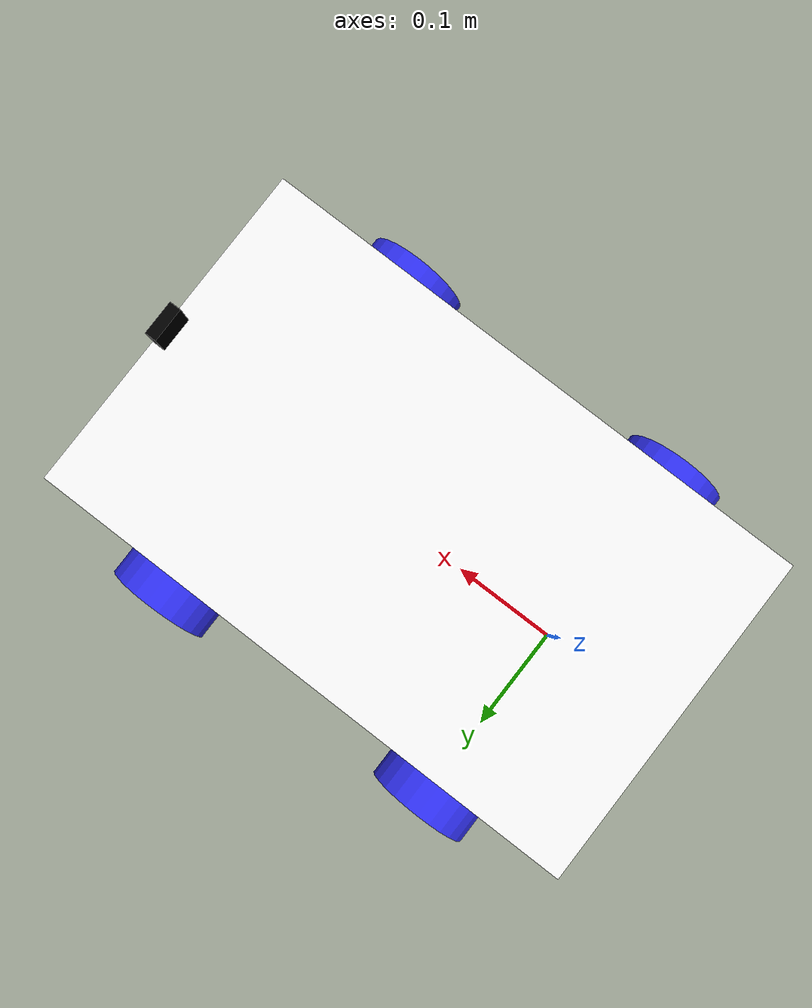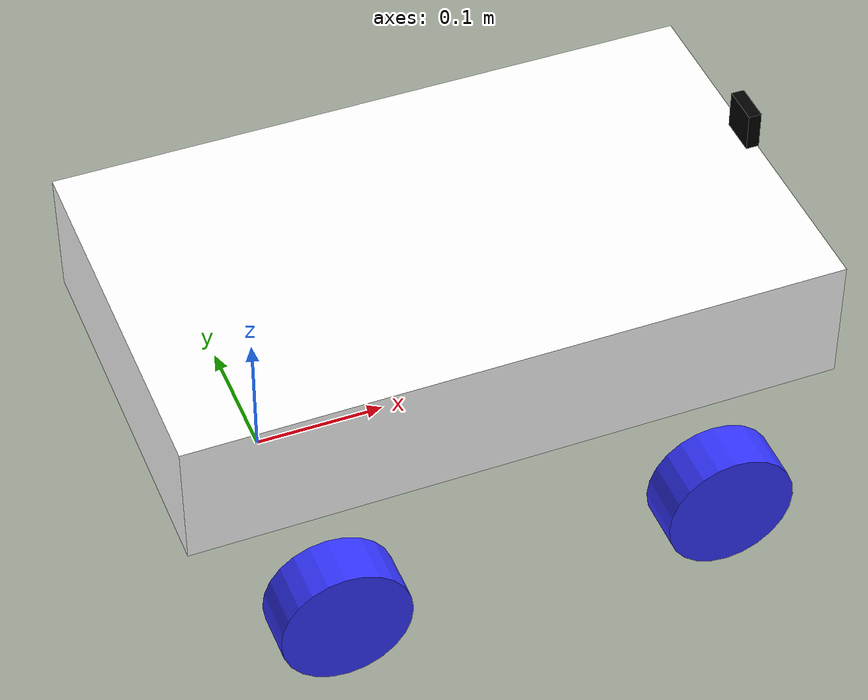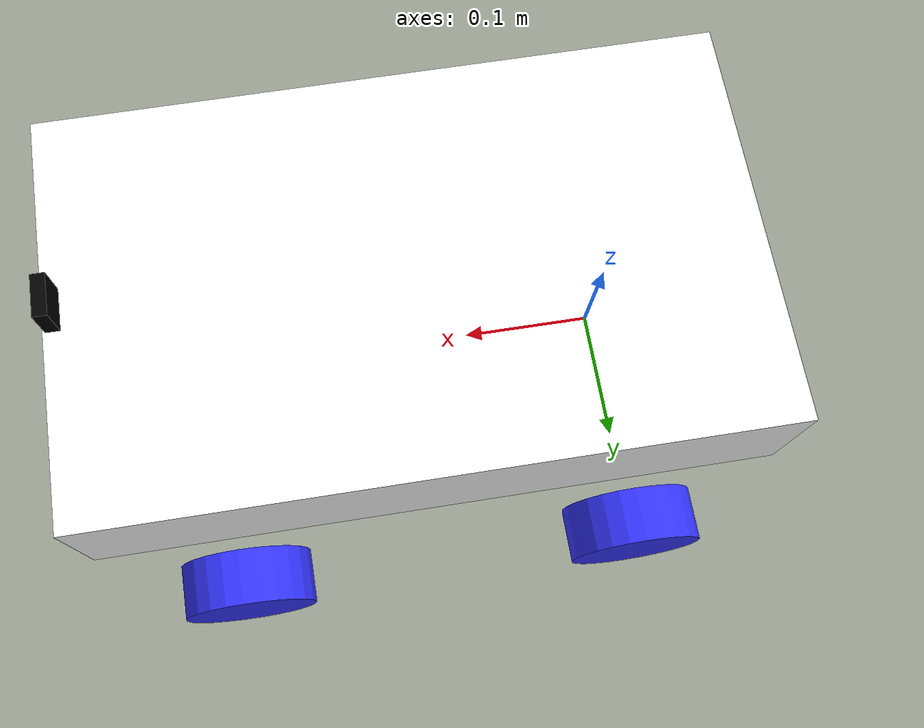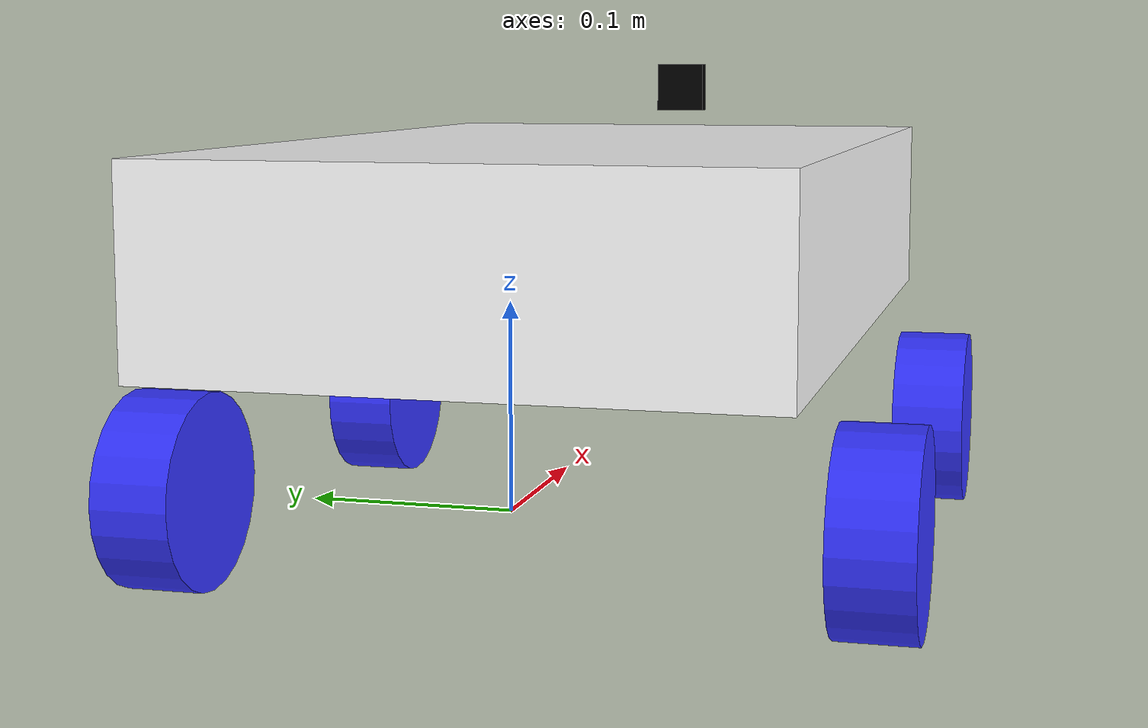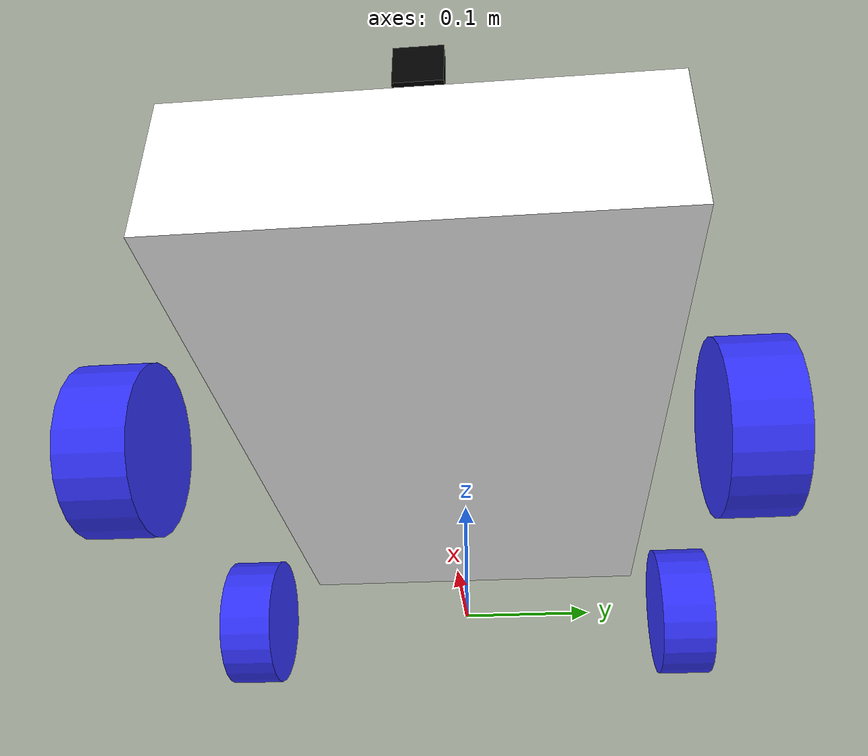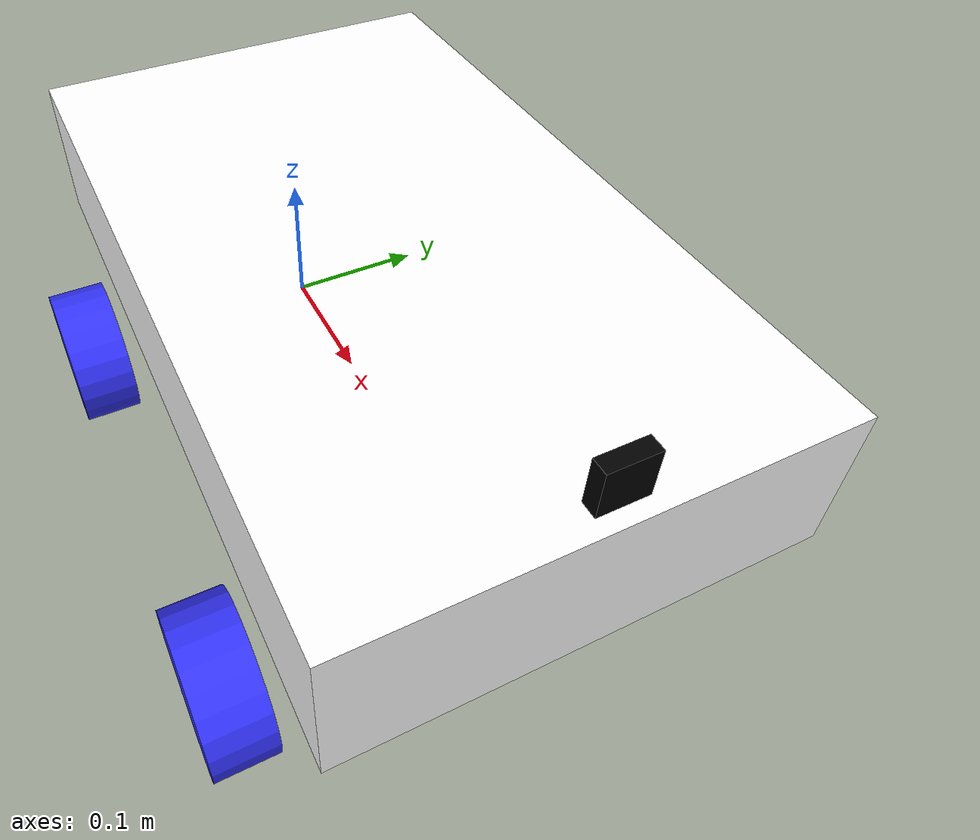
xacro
<?xml version="1.0"?>
<robot xmlns:xacro="http://www.ros.org/wiki/xacro" >

    <xacro:include filename="inertial_macros.xacro"/>

    <material name="white">
        <color rgba="1 1 1 1" />
    </material>

    <material name="orange">
        <color rgba="1 0.3 0.1 1"/>
    </material>

    <material name="blue">
        <color rgba="0.2 0.2 1 1"/>
    </material>

    <material name="black">
        <color rgba="0 0 0 1"/>
    </material>

    <link name="base_link">

    </link>

    <joint name="chassis_joint" type="fixed">
        <parent link="base_link"/>
        <child link="chassis"/>
        <origin xyz="-0.1 0 0"/>
    </joint>

    <link name="chassis">
        <visual>
            <origin xyz="0.25 0 0.12"/>
            <geometry>
                <box size="0.5 0.3 0.1"/>
            </geometry>
            <material name="white"/>
        </visual>
        <collision>
            <origin xyz="0.15 0 0.075"/>
            <geometry>
                <box size="0.3 0.3 0.15"/>
            </geometry>
        </collision>
        <xacro:inertial_box mass="0.5" x="0.3" y="0.3" z="0.15">
            <origin xyz="0.15 0 0.075" rpy="0 0 0"/>
        </xacro:inertial_box>
    </link>

    <gazebo reference="chassis">
        <material>Gazebo/Red</material>
    </gazebo>

    <joint name="left_wheel_joint" type="continuous">
        <parent link="base_link"/>
        <child link="left_wheel"/>
        <origin xyz="0 0.175 0" rpy="-${pi/2} 0 0" />
        <axis xyz="0 0 1"/>
    </joint>

    <link name="left_wheel">
        <visual>
            <geometry>
                <cylinder radius="0.05" length="0.04"/>
            </geometry>
            <material name="blue"/>
        </visual>
        <collision>
            <geometry>
                <cylinder radius="0.05" length="0.04"/>
            </geometry>
        </collision>
        <xacro:inertial_cylinder mass="0.1" length="0.04" radius="0.05">
            <origin xyz="0 0 0" rpy="0 0 0"/>
        </xacro:inertial_cylinder>
    </link>

    <gazebo reference="left_wheel">
        <material>Gazebo/Blue</material>
    </gazebo>

    <joint name="left_wheel_joint_2" type="continuous">
        <parent link="base_link"/>
        <child link="left_wheel_2"/>
        <origin xyz="0.3 0.175 0" rpy="-${pi/2} 0 0" />
        <axis xyz="0 0 1"/>
    </joint>

    <link name="left_wheel_2">
        <visual>
            <geometry>
                <cylinder radius="0.05" length="0.04"/>
            </geometry>
            <material name="blue"/>
        </visual>
        <collision>
            <geometry>
                <cylinder radius="0.05" length="0.04"/>
            </geometry>
        </collision>
        <xacro:inertial_cylinder mass="0.1" length="0.04" radius="0.05">
            <origin xyz="0 0 0" rpy="0 0 0"/>
        </xacro:inertial_cylinder>
    </link>

    <gazebo reference="left_wheel_2">
        <material>Gazebo/Blue</material>
    </gazebo>

    <joint name="right_wheel_joint" type="continuous">
        <parent link="base_link"/>
        <child link="right_wheel"/>
        <origin xyz="0 -0.175 0" rpy="${pi/2} 0 0" />
        <axis xyz="0 0 -1"/>
    </joint>

    <link name="right_wheel">
        <visual>
            <geometry>
                <cylinder radius="0.05" length="0.04"/>
            </geometry>
            <material name="blue"/>
        </visual>
        <collision>
            <geometry>
                <cylinder radius="0.05" length="0.04"/>
            </geometry>
        </collision>
        <xacro:inertial_cylinder mass="0.1" length="0.04" radius="0.05">
            <origin xyz="0 0 0" rpy="0 0 0"/>
        </xacro:inertial_cylinder>
    </link>

    <gazebo reference="right_wheel">
        <material>Gazebo/Blue</material>
    </gazebo>

    <joint name="right_wheel_joint_2" type="continuous">
        <parent link="base_link"/>
        <child link="right_wheel_2"/>
        <origin xyz="0.3 -0.175 0" rpy="${pi/2} 0 0" />
        <axis xyz="0 0 -1"/>
    </joint>

    <link name="right_wheel_2">
        <visual>
            <geometry>
                <cylinder radius="0.05" length="0.04"/>
            </geometry>
            <material name="blue"/>
        </visual>
        <collision>
            <geometry>
                <cylinder radius="0.05" length="0.04"/>
            </geometry>
        </collision>
        <xacro:inertial_cylinder mass="0.1" length="0.04" radius="0.05">
            <origin xyz="0 0 0" rpy="0 0 0"/>
        </xacro:inertial_cylinder>
    </link>

    <gazebo reference="right_wheel_2">
        <material>Gazebo/Blue</material>
    </gazebo>

    <!-- 1) ZED2 Kameranın Ana Gövde Link'i ve Görünümü -->

<link name="zed2_camera_link">
  <visual>
    <geometry><box size="0.010 0.03 0.03"/></geometry>
    <material name="black"/>
  </visual>
</link>

<joint name="zed2_camera_joint" type="fixed">
  <parent link="base_link"/>
  <child  link="zed2_camera_link"/>
  <origin xyz="0.39 0 0.195" rpy="0 0 0"/>
</joint>

<link name="zed2_left_optical_frame">
  <pose>-0.06 0 0 0 0 0</pose>
</link>

<joint name="zed2_left_optical_joint" type="fixed">
  <parent link="zed2_camera_link"/>
  <child  link="zed2_left_optical_frame"/>
  <origin xyz="0 0 0" rpy="0 0 0"/>
</joint>

<link name="zed2_right_optical_frame">
  <pose>0.06 0 0  0 -1.5708 -1.5708</pose>
</link>

<joint name="zed2_right_optical_joint" type="fixed">
  <parent link="zed2_camera_link"/>
  <child  link="zed2_right_optical_frame"/>
  <origin xyz="0 0 0" rpy="0 0 0"/>
</joint>

<gazebo reference="zed2_left_optical_frame">
  <sensor name="zed2_left_rgb" type="camera">
    <update_rate>30</update_rate>
    <camera>
      <horizontal_fov>1.047</horizontal_fov>
      <image>
        <width>1280</width><height>720</height><format>R8G8B8</format>
      </image>
      <clip><near>0.1</near><far>30.0</far></clip>
    </camera>

    <plugin name="zed2_left_rgb_plugin" filename="libgazebo_ros_camera.so">
      <ros><namespace>/zed2/left</namespace></ros>
      <cameraName>zed2_left</cameraName>
      <imageTopicName>image_raw</imageTopicName>
      <cameraInfoTopicName>camera_info</cameraInfoTopicName>
      <frameName>zed2_left_optical_frame</frameName>
      <alwaysOn>true</alwaysOn>
    </plugin>
  </sensor>
</gazebo>

<gazebo reference="zed2_camera_link">
        <material>Gazebo/Black</material>
    </gazebo>

<gazebo reference="zed2_right_optical_frame">
  <sensor name="zed2_right_depth" type="depth">
    <always_on>true</always_on>
    <update_rate>30</update_rate>
    <camera name="zed2_right_depth_cam">
      <horizontal_fov>1.047</horizontal_fov>
      <image>
        <width>1280</width><height>720</height><format>R8G8B8</format>
      </image>
      <clip><near>0.1</near><far>30.0</far></clip>
    </camera>

    <plugin name="zed2_right_depth_plugin" filename="libgazebo_ros_camera.so">
      <ros><namespace>/zed2/right</namespace></ros>
      <cameraName>zed2_right_depth</cameraName>
      <frameName>zed2_right_opticalframe</frameName>

      <depthImageTopicName>depth/image_raw</depthImageTopicName>
      <depthImageCameraInfoTopicName>depth/camera_info</depthImageCameraInfoTopicName>
      <pointCloudTopicName>depth/points</pointCloudTopicName>

      <pointCloudCutoff>0.1</pointCloudCutoff>
      <pointCloudCutoffMax>30.0</pointCloudCutoffMax>
      <alwaysOn>true</alwaysOn>
    </plugin>
  </sensor>
</gazebo>

</robot>
